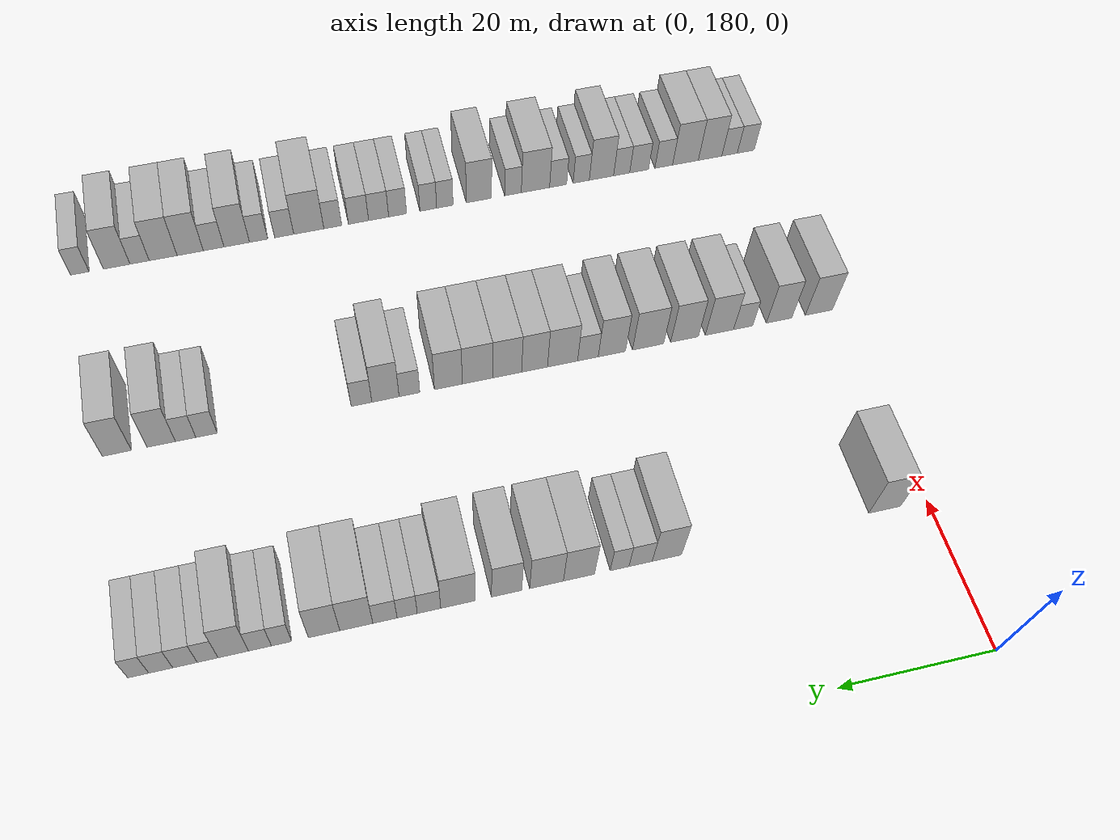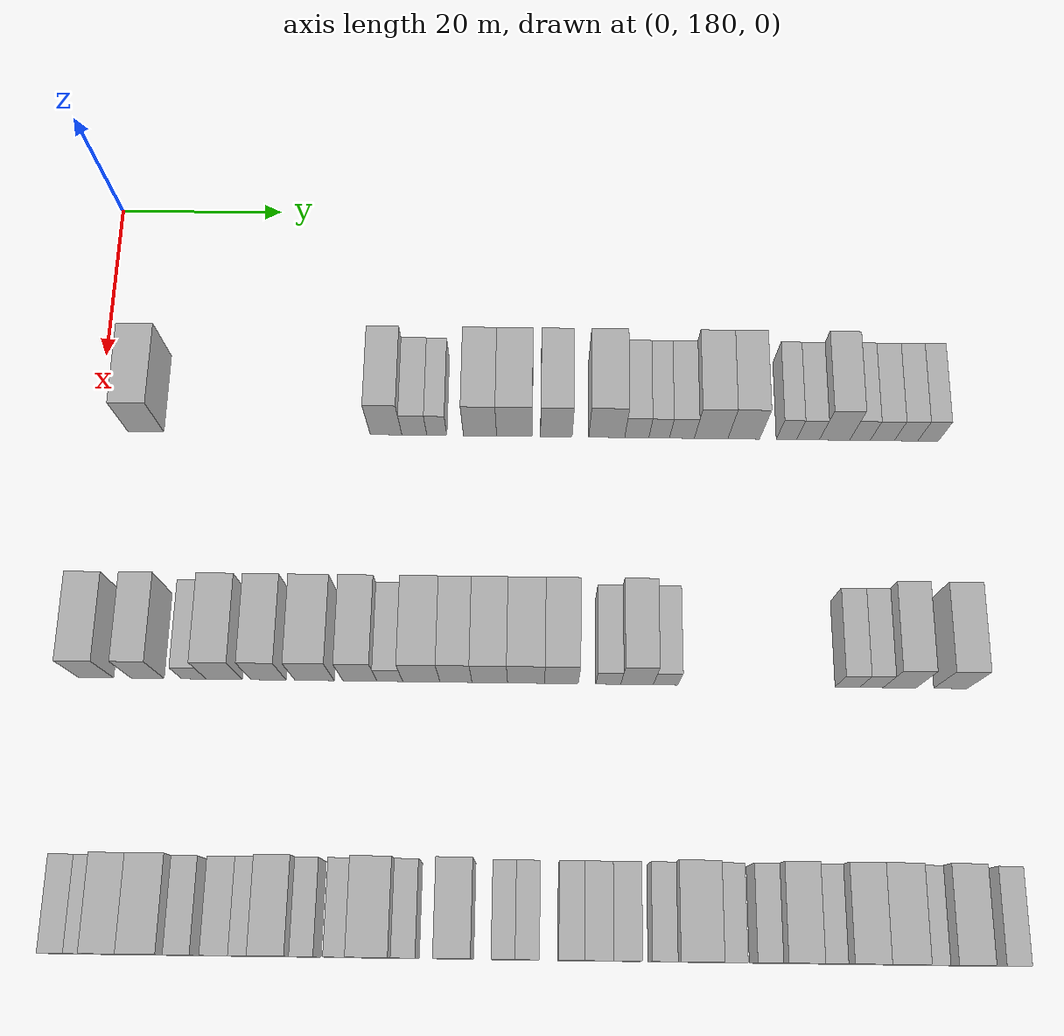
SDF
<sdf version="1.6">
 <world name="default">
  <model name="building_116">
   <static>1</static>
   <pose>25.0000 185.7543 0 0.000000 0.000000 0.000000</pose>
   <link name="link">
    <pose>0 0 4.50 0 0 0</pose>
    <collision name="collision"><geometry><box><size>10.0000 4.3108 9.0000</size></box></geometry></collision>
    <visual name="visual">
     <cast_shadows>0</cast_shadows>
     <geometry><box><size>10.0000 4.3108 9.0000</size></box></geometry>
     <material>
      <script>
       <uri>model://HANNAS_wall/materials/scripts</uri>
       <uri>model://HANNAS_wall/materials/textures</uri>
       <name>vrc/HANNAS_wall</name>
      </script>
     </material>
    </visual>
   </link>
  </model>
  <model name="building_117">
   <static>1</static>
   <pose>25.0000 214.6061 0 0.000000 0.000000 0.000000</pose>
   <link name="link">
    <pose>0 0 4.50 0 0 0</pose>
    <collision name="collision"><geometry><box><size>10.0000 3.7976 9.0000</size></box></geometry></collision>
    <visual name="visual">
     <cast_shadows>0</cast_shadows>
     <geometry><box><size>10.0000 3.7976 9.0000</size></box></geometry>
     <material>
      <script>
       <uri>model://HANNAS_wall/materials/scripts</uri>
       <uri>model://HANNAS_wall/materials/textures</uri>
       <name>vrc/HANNAS_wall</name>
      </script>
     </material>
    </visual>
   </link>
  </model>
  <model name="building_118">
   <static>1</static>
   <pose>25.0000 218.0024 0 0.000000 0.000000 0.000000</pose>
   <link name="link">
    <pose>0 0 3.00 0 0 0</pose>
    <collision name="collision"><geometry><box><size>10.0000 2.9949 6.0000</size></box></geometry></collision>
    <visual name="visual">
     <cast_shadows>0</cast_shadows>
     <geometry><box><size>10.0000 2.9949 6.0000</size></box></geometry>
     <material>
      <script>
       <uri>model://HANNAS_wall/materials/scripts</uri>
       <uri>model://HANNAS_wall/materials/textures</uri>
       <name>vrc/HANNAS_wall</name>
      </script>
     </material>
    </visual>
   </link>
  </model>
  <model name="building_119">
   <static>1</static>
   <pose>25.0000 220.7003 0 0.000000 0.000000 0.000000</pose>
   <link name="link">
    <pose>0 0 3.00 0 0 0</pose>
    <collision name="collision"><geometry><box><size>10.0000 2.4010 6.0000</size></box></geometry></collision>
    <visual name="visual">
     <cast_shadows>0</cast_shadows>
     <geometry><box><size>10.0000 2.4010 6.0000</size></box></geometry>
     <material>
      <script>
       <uri>model://HANNAS_wall/materials/scripts</uri>
       <uri>model://HANNAS_wall/materials/textures</uri>
       <name>vrc/HANNAS_wall</name>
      </script>
     </material>
    </visual>
   </link>
  </model>
  <model name="building_120">
   <static>1</static>
   <pose>25.0000 225.8853 0 0.000000 0.000000 0.000000</pose>
   <link name="link">
    <pose>0 0 4.50 0 0 0</pose>
    <collision name="collision"><geometry><box><size>10.0000 3.9689 9.0000</size></box></geometry></collision>
    <visual name="visual">
     <cast_shadows>0</cast_shadows>
     <geometry><box><size>10.0000 3.9689 9.0000</size></box></geometry>
     <material>
      <script>
       <uri>model://HANNAS_wall/materials/scripts</uri>
       <uri>model://HANNAS_wall/materials/textures</uri>
       <name>vrc/HANNAS_wall</name>
      </script>
     </material>
    </visual>
   </link>
  </model>
  <model name="building_121">
   <static>1</static>
   <pose>25.0000 230.0027 0 0.000000 0.000000 0.000000</pose>
   <link name="link">
    <pose>0 0 4.50 0 0 0</pose>
    <collision name="collision"><geometry><box><size>10.0000 4.2660 9.0000</size></box></geometry></collision>
    <visual name="visual">
     <cast_shadows>0</cast_shadows>
     <geometry><box><size>10.0000 4.2660 9.0000</size></box></geometry>
     <material>
      <script>
       <uri>model://HANNAS_wall/materials/scripts</uri>
       <uri>model://HANNAS_wall/materials/textures</uri>
       <name>vrc/HANNAS_wall</name>
      </script>
     </material>
    </visual>
   </link>
  </model>
  <model name="building_122">
   <static>1</static>
   <pose>25.0000 235.0305 0 0.000000 0.000000 0.000000</pose>
   <link name="link">
    <pose>0 0 4.50 0 0 0</pose>
    <collision name="collision"><geometry><box><size>10.0000 3.7897 9.0000</size></box></geometry></collision>
    <visual name="visual">
     <cast_shadows>0</cast_shadows>
     <geometry><box><size>10.0000 3.7897 9.0000</size></box></geometry>
     <material>
      <script>
       <uri>model://HANNAS_wall/materials/scripts</uri>
       <uri>model://HANNAS_wall/materials/textures</uri>
       <name>vrc/HANNAS_wall</name>
      </script>
     </material>
    </visual>
   </link>
  </model>
  <model name="building_123">
   <static>1</static>
   <pose>25.0000 241.0811 0 0.000000 0.000000 0.000000</pose>
   <link name="link">
    <pose>0 0 4.50 0 0 0</pose>
    <collision name="collision"><geometry><box><size>10.0000 4.3114 9.0000</size></box></geometry></collision>
    <visual name="visual">
     <cast_shadows>0</cast_shadows>
     <geometry><box><size>10.0000 4.3114 9.0000</size></box></geometry>
     <material>
      <script>
       <uri>model://HANNAS_wall/materials/scripts</uri>
       <uri>model://HANNAS_wall/materials/textures</uri>
       <name>vrc/HANNAS_wall</name>
      </script>
     </material>
    </visual>
   </link>
  </model>
  <model name="building_124">
   <static>1</static>
   <pose>25.0000 244.6826 0 0.000000 0.000000 0.000000</pose>
   <link name="link">
    <pose>0 0 3.00 0 0 0</pose>
    <collision name="collision"><geometry><box><size>10.0000 2.8916 6.0000</size></box></geometry></collision>
    <visual name="visual">
     <cast_shadows>0</cast_shadows>
     <geometry><box><size>10.0000 2.8916 6.0000</size></box></geometry>
     <material>
      <script>
       <uri>model://HANNAS_wall/materials/scripts</uri>
       <uri>model://HANNAS_wall/materials/textures</uri>
       <name>vrc/HANNAS_wall</name>
      </script>
     </material>
    </visual>
   </link>
  </model>
  <model name="building_125">
   <static>1</static>
   <pose>25.0000 247.3691 0 0.000000 0.000000 0.000000</pose>
   <link name="link">
    <pose>0 0 3.00 0 0 0</pose>
    <collision name="collision"><geometry><box><size>10.0000 2.4814 6.0000</size></box></geometry></collision>
    <visual name="visual">
     <cast_shadows>0</cast_shadows>
     <geometry><box><size>10.0000 2.4814 6.0000</size></box></geometry>
     <material>
      <script>
       <uri>model://HANNAS_wall/materials/scripts</uri>
       <uri>model://HANNAS_wall/materials/textures</uri>
       <name>vrc/HANNAS_wall</name>
      </script>
     </material>
    </visual>
   </link>
  </model>
  <model name="building_126">
   <static>1</static>
   <pose>25.0000 250.0940 0 0.000000 0.000000 0.000000</pose>
   <link name="link">
    <pose>0 0 3.00 0 0 0</pose>
    <collision name="collision"><geometry><box><size>10.0000 2.9683 6.0000</size></box></geometry></collision>
    <visual name="visual">
     <cast_shadows>0</cast_shadows>
     <geometry><box><size>10.0000 2.9683 6.0000</size></box></geometry>
     <material>
      <script>
       <uri>model://HANNAS_wall/materials/scripts</uri>
       <uri>model://HANNAS_wall/materials/textures</uri>
       <name>vrc/HANNAS_wall</name>
      </script>
     </material>
    </visual>
   </link>
  </model>
  <model name="building_127">
   <static>1</static>
   <pose>25.0000 253.5881 0 0.000000 0.000000 0.000000</pose>
   <link name="link">
    <pose>0 0 4.50 0 0 0</pose>
    <collision name="collision"><geometry><box><size>10.0000 4.0201 9.0000</size></box></geometry></collision>
    <visual name="visual">
     <cast_shadows>0</cast_shadows>
     <geometry><box><size>10.0000 4.0201 9.0000</size></box></geometry>
     <material>
      <script>
       <uri>model://HANNAS_wall/materials/scripts</uri>
       <uri>model://HANNAS_wall/materials/textures</uri>
       <name>vrc/HANNAS_wall</name>
      </script>
     </material>
    </visual>
   </link>
  </model>
  <model name="building_128">
   <static>1</static>
   <pose>25.0000 257.5012 0 0.000000 0.000000 0.000000</pose>
   <link name="link">
    <pose>0 0 4.50 0 0 0</pose>
    <collision name="collision"><geometry><box><size>10.0000 3.8061 9.0000</size></box></geometry></collision>
    <visual name="visual">
     <cast_shadows>0</cast_shadows>
     <geometry><box><size>10.0000 3.8061 9.0000</size></box></geometry>
     <material>
      <script>
       <uri>model://HANNAS_wall/materials/scripts</uri>
       <uri>model://HANNAS_wall/materials/textures</uri>
       <name>vrc/HANNAS_wall</name>
      </script>
     </material>
    </visual>
   </link>
  </model>
  <model name="building_129">
   <static>1</static>
   <pose>25.0000 262.6224 0 0.000000 0.000000 0.000000</pose>
   <link name="link">
    <pose>0 0 3.00 0 0 0</pose>
    <collision name="collision"><geometry><box><size>10.0000 2.4363 6.0000</size></box></geometry></collision>
    <visual name="visual">
     <cast_shadows>0</cast_shadows>
     <geometry><box><size>10.0000 2.4363 6.0000</size></box></geometry>
     <material>
      <script>
       <uri>model://HANNAS_wall/materials/scripts</uri>
       <uri>model://HANNAS_wall/materials/textures</uri>
       <name>vrc/HANNAS_wall</name>
      </script>
     </material>
    </visual>
   </link>
  </model>
  <model name="building_130">
   <static>1</static>
   <pose>25.0000 265.2076 0 0.000000 0.000000 0.000000</pose>
   <link name="link">
    <pose>0 0 3.00 0 0 0</pose>
    <collision name="collision"><geometry><box><size>10.0000 2.7340 6.0000</size></box></geometry></collision>
    <visual name="visual">
     <cast_shadows>0</cast_shadows>
     <geometry><box><size>10.0000 2.7340 6.0000</size></box></geometry>
     <material>
      <script>
       <uri>model://HANNAS_wall/materials/scripts</uri>
       <uri>model://HANNAS_wall/materials/textures</uri>
       <name>vrc/HANNAS_wall</name>
      </script>
     </material>
    </visual>
   </link>
  </model>
  <model name="building_131">
   <static>1</static>
   <pose>25.0000 268.3865 0 0.000000 0.000000 0.000000</pose>
   <link name="link">
    <pose>0 0 4.50 0 0 0</pose>
    <collision name="collision"><geometry><box><size>10.0000 3.6237 9.0000</size></box></geometry></collision>
    <visual name="visual">
     <cast_shadows>0</cast_shadows>
     <geometry><box><size>10.0000 3.6237 9.0000</size></box></geometry>
     <material>
      <script>
       <uri>model://HANNAS_wall/materials/scripts</uri>
       <uri>model://HANNAS_wall/materials/textures</uri>
       <name>vrc/HANNAS_wall</name>
      </script>
     </material>
    </visual>
   </link>
  </model>
  <model name="building_132">
   <static>1</static>
   <pose>25.0000 271.4313 0 0.000000 0.000000 0.000000</pose>
   <link name="link">
    <pose>0 0 3.00 0 0 0</pose>
    <collision name="collision"><geometry><box><size>10.0000 2.4657 6.0000</size></box></geometry></collision>
    <visual name="visual">
     <cast_shadows>0</cast_shadows>
     <geometry><box><size>10.0000 2.4657 6.0000</size></box></geometry>
     <material>
      <script>
       <uri>model://HANNAS_wall/materials/scripts</uri>
       <uri>model://HANNAS_wall/materials/textures</uri>
       <name>vrc/HANNAS_wall</name>
      </script>
     </material>
    </visual>
   </link>
  </model>
  <model name="building_133">
   <static>1</static>
   <pose>25.0000 274.1054 0 0.000000 0.000000 0.000000</pose>
   <link name="link">
    <pose>0 0 3.00 0 0 0</pose>
    <collision name="collision"><geometry><box><size>10.0000 2.8825 6.0000</size></box></geometry></collision>
    <visual name="visual">
     <cast_shadows>0</cast_shadows>
     <geometry><box><size>10.0000 2.8825 6.0000</size></box></geometry>
     <material>
      <script>
       <uri>model://HANNAS_wall/materials/scripts</uri>
       <uri>model://HANNAS_wall/materials/textures</uri>
       <name>vrc/HANNAS_wall</name>
      </script>
     </material>
    </visual>
   </link>
  </model>
  <model name="building_134">
   <static>1</static>
   <pose>25.0000 276.9560 0 0.000000 0.000000 0.000000</pose>
   <link name="link">
    <pose>0 0 3.00 0 0 0</pose>
    <collision name="collision"><geometry><box><size>10.0000 2.8188 6.0000</size></box></geometry></collision>
    <visual name="visual">
     <cast_shadows>0</cast_shadows>
     <geometry><box><size>10.0000 2.8188 6.0000</size></box></geometry>
     <material>
      <script>
       <uri>model://HANNAS_wall/materials/scripts</uri>
       <uri>model://HANNAS_wall/materials/textures</uri>
       <name>vrc/HANNAS_wall</name>
      </script>
     </material>
    </visual>
   </link>
  </model>
  <model name="building_135">
   <static>1</static>
   <pose>25.0000 279.5966 0 0.000000 0.000000 0.000000</pose>
   <link name="link">
    <pose>0 0 3.00 0 0 0</pose>
    <collision name="collision"><geometry><box><size>10.0000 2.4624 6.0000</size></box></geometry></collision>
    <visual name="visual">
     <cast_shadows>0</cast_shadows>
     <geometry><box><size>10.0000 2.4624 6.0000</size></box></geometry>
     <material>
      <script>
       <uri>model://HANNAS_wall/materials/scripts</uri>
       <uri>model://HANNAS_wall/materials/textures</uri>
       <name>vrc/HANNAS_wall</name>
      </script>
     </material>
    </visual>
   </link>
  </model>
  <model name="building_251">
   <static>1</static>
   <pose>55.0000 182.9969 0 0.000000 0.000000 0.000000</pose>
   <link name="link">
    <pose>0 0 4.50 0 0 0</pose>
    <collision name="collision"><geometry><box><size>10.0000 3.9967 9.0000</size></box></geometry></collision>
    <visual name="visual">
     <cast_shadows>0</cast_shadows>
     <geometry><box><size>10.0000 3.9967 9.0000</size></box></geometry>
     <material>
      <script>
       <uri>model://HANNAS_wall/materials/scripts</uri>
       <uri>model://HANNAS_wall/materials/textures</uri>
       <name>vrc/HANNAS_wall</name>
      </script>
     </material>
    </visual>
   </link>
  </model>
  <model name="building_252">
   <static>1</static>
   <pose>55.0000 188.8601 0 0.000000 0.000000 0.000000</pose>
   <link name="link">
    <pose>0 0 4.50 0 0 0</pose>
    <collision name="collision"><geometry><box><size>10.0000 3.7296 9.0000</size></box></geometry></collision>
    <visual name="visual">
     <cast_shadows>0</cast_shadows>
     <geometry><box><size>10.0000 3.7296 9.0000</size></box></geometry>
     <material>
      <script>
       <uri>model://HANNAS_wall/materials/scripts</uri>
       <uri>model://HANNAS_wall/materials/textures</uri>
       <name>vrc/HANNAS_wall</name>
      </script>
     </material>
    </visual>
   </link>
  </model>
  <model name="building_253">
   <static>1</static>
   <pose>55.0000 194.1191 0 0.000000 0.000000 0.000000</pose>
   <link name="link">
    <pose>0 0 3.00 0 0 0</pose>
    <collision name="collision"><geometry><box><size>10.0000 2.7883 6.0000</size></box></geometry></collision>
    <visual name="visual">
     <cast_shadows>0</cast_shadows>
     <geometry><box><size>10.0000 2.7883 6.0000</size></box></geometry>
     <material>
      <script>
       <uri>model://HANNAS_wall/materials/scripts</uri>
       <uri>model://HANNAS_wall/materials/textures</uri>
       <name>vrc/HANNAS_wall</name>
      </script>
     </material>
    </visual>
   </link>
  </model>
  <model name="building_254">
   <static>1</static>
   <pose>55.0000 197.5589 0 0.000000 0.000000 0.000000</pose>
   <link name="link">
    <pose>0 0 4.50 0 0 0</pose>
    <collision name="collision"><geometry><box><size>10.0000 4.0913 9.0000</size></box></geometry></collision>
    <visual name="visual">
     <cast_shadows>0</cast_shadows>
     <geometry><box><size>10.0000 4.0913 9.0000</size></box></geometry>
     <material>
      <script>
       <uri>model://HANNAS_wall/materials/scripts</uri>
       <uri>model://HANNAS_wall/materials/textures</uri>
       <name>vrc/HANNAS_wall</name>
      </script>
     </material>
    </visual>
   </link>
  </model>
  <model name="building_255">
   <static>1</static>
   <pose>55.0000 202.6012 0 0.000000 0.000000 0.000000</pose>
   <link name="link">
    <pose>0 0 4.50 0 0 0</pose>
    <collision name="collision"><geometry><box><size>10.0000 3.9933 9.0000</size></box></geometry></collision>
    <visual name="visual">
     <cast_shadows>0</cast_shadows>
     <geometry><box><size>10.0000 3.9933 9.0000</size></box></geometry>
     <material>
      <script>
       <uri>model://HANNAS_wall/materials/scripts</uri>
       <uri>model://HANNAS_wall/materials/textures</uri>
       <name>vrc/HANNAS_wall</name>
      </script>
     </material>
    </visual>
   </link>
  </model>
  <model name="building_256">
   <static>1</static>
   <pose>55.0000 207.8295 0 0.000000 0.000000 0.000000</pose>
   <link name="link">
    <pose>0 0 4.50 0 0 0</pose>
    <collision name="collision"><geometry><box><size>10.0000 4.4632 9.0000</size></box></geometry></collision>
    <visual name="visual">
     <cast_shadows>0</cast_shadows>
     <geometry><box><size>10.0000 4.4632 9.0000</size></box></geometry>
     <material>
      <script>
       <uri>model://HANNAS_wall/materials/scripts</uri>
       <uri>model://HANNAS_wall/materials/textures</uri>
       <name>vrc/HANNAS_wall</name>
      </script>
     </material>
    </visual>
   </link>
  </model>
  <model name="building_257">
   <static>1</static>
   <pose>55.0000 212.9936 0 0.000000 0.000000 0.000000</pose>
   <link name="link">
    <pose>0 0 4.50 0 0 0</pose>
    <collision name="collision"><geometry><box><size>10.0000 3.8649 9.0000</size></box></geometry></collision>
    <visual name="visual">
     <cast_shadows>0</cast_shadows>
     <geometry><box><size>10.0000 3.8649 9.0000</size></box></geometry>
     <material>
      <script>
       <uri>model://HANNAS_wall/materials/scripts</uri>
       <uri>model://HANNAS_wall/materials/textures</uri>
       <name>vrc/HANNAS_wall</name>
      </script>
     </material>
    </visual>
   </link>
  </model>
  <model name="building_258">
   <static>1</static>
   <pose>55.0000 216.3793 0 0.000000 0.000000 0.000000</pose>
   <link name="link">
    <pose>0 0 3.00 0 0 0</pose>
    <collision name="collision"><geometry><box><size>10.0000 2.9066 6.0000</size></box></geometry></collision>
    <visual name="visual">
     <cast_shadows>0</cast_shadows>
     <geometry><box><size>10.0000 2.9066 6.0000</size></box></geometry>
     <material>
      <script>
       <uri>model://HANNAS_wall/materials/scripts</uri>
       <uri>model://HANNAS_wall/materials/textures</uri>
       <name>vrc/HANNAS_wall</name>
      </script>
     </material>
    </visual>
   </link>
  </model>
  <model name="building_259">
   <static>1</static>
   <pose>55.0000 219.9493 0 0.000000 0.000000 0.000000</pose>
   <link name="link">
    <pose>0 0 4.50 0 0 0</pose>
    <collision name="collision"><geometry><box><size>10.0000 4.2335 9.0000</size></box></geometry></collision>
    <visual name="visual">
     <cast_shadows>0</cast_shadows>
     <geometry><box><size>10.0000 4.2335 9.0000</size></box></geometry>
     <material>
      <script>
       <uri>model://HANNAS_wall/materials/scripts</uri>
       <uri>model://HANNAS_wall/materials/textures</uri>
       <name>vrc/HANNAS_wall</name>
      </script>
     </material>
    </visual>
   </link>
  </model>
  <model name="building_260">
   <static>1</static>
   <pose>55.0000 223.8778 0 0.000000 0.000000 0.000000</pose>
   <link name="link">
    <pose>0 0 4.50 0 0 0</pose>
    <collision name="collision"><geometry><box><size>10.0000 3.6234 9.0000</size></box></geometry></collision>
    <visual name="visual">
     <cast_shadows>0</cast_shadows>
     <geometry><box><size>10.0000 3.6234 9.0000</size></box></geometry>
     <material>
      <script>
       <uri>model://HANNAS_wall/materials/scripts</uri>
       <uri>model://HANNAS_wall/materials/textures</uri>
       <name>vrc/HANNAS_wall</name>
      </script>
     </material>
    </visual>
   </link>
  </model>
  <model name="building_261">
   <static>1</static>
   <pose>55.0000 227.7032 0 0.000000 0.000000 0.000000</pose>
   <link name="link">
    <pose>0 0 4.50 0 0 0</pose>
    <collision name="collision"><geometry><box><size>10.0000 4.0274 9.0000</size></box></geometry></collision>
    <visual name="visual">
     <cast_shadows>0</cast_shadows>
     <geometry><box><size>10.0000 4.0274 9.0000</size></box></geometry>
     <material>
      <script>
       <uri>model://HANNAS_wall/materials/scripts</uri>
       <uri>model://HANNAS_wall/materials/textures</uri>
       <name>vrc/HANNAS_wall</name>
      </script>
     </material>
    </visual>
   </link>
  </model>
  <model name="building_262">
   <static>1</static>
   <pose>55.0000 231.8077 0 0.000000 0.000000 0.000000</pose>
   <link name="link">
    <pose>0 0 4.50 0 0 0</pose>
    <collision name="collision"><geometry><box><size>10.0000 4.1816 9.0000</size></box></geometry></collision>
    <visual name="visual">
     <cast_shadows>0</cast_shadows>
     <geometry><box><size>10.0000 4.1816 9.0000</size></box></geometry>
     <material>
      <script>
       <uri>model://HANNAS_wall/materials/scripts</uri>
       <uri>model://HANNAS_wall/materials/textures</uri>
       <name>vrc/HANNAS_wall</name>
      </script>
     </material>
    </visual>
   </link>
  </model>
  <model name="building_263">
   <static>1</static>
   <pose>55.0000 235.8079 0 0.000000 0.000000 0.000000</pose>
   <link name="link">
    <pose>0 0 4.50 0 0 0</pose>
    <collision name="collision"><geometry><box><size>10.0000 3.8188 9.0000</size></box></geometry></collision>
    <visual name="visual">
     <cast_shadows>0</cast_shadows>
     <geometry><box><size>10.0000 3.8188 9.0000</size></box></geometry>
     <material>
      <script>
       <uri>model://HANNAS_wall/materials/scripts</uri>
       <uri>model://HANNAS_wall/materials/textures</uri>
       <name>vrc/HANNAS_wall</name>
      </script>
     </material>
    </visual>
   </link>
  </model>
  <model name="building_264">
   <static>1</static>
   <pose>55.0000 241.1278 0 0.000000 0.000000 0.000000</pose>
   <link name="link">
    <pose>0 0 3.00 0 0 0</pose>
    <collision name="collision"><geometry><box><size>10.0000 2.8210 6.0000</size></box></geometry></collision>
    <visual name="visual">
     <cast_shadows>0</cast_shadows>
     <geometry><box><size>10.0000 2.8210 6.0000</size></box></geometry>
     <material>
      <script>
       <uri>model://HANNAS_wall/materials/scripts</uri>
       <uri>model://HANNAS_wall/materials/textures</uri>
       <name>vrc/HANNAS_wall</name>
      </script>
     </material>
    </visual>
   </link>
  </model>
  <model name="building_265">
   <static>1</static>
   <pose>55.0000 244.3844 0 0.000000 0.000000 0.000000</pose>
   <link name="link">
    <pose>0 0 4.50 0 0 0</pose>
    <collision name="collision"><geometry><box><size>10.0000 3.6921 9.0000</size></box></geometry></collision>
    <visual name="visual">
     <cast_shadows>0</cast_shadows>
     <geometry><box><size>10.0000 3.6921 9.0000</size></box></geometry>
     <material>
      <script>
       <uri>model://HANNAS_wall/materials/scripts</uri>
       <uri>model://HANNAS_wall/materials/textures</uri>
       <name>vrc/HANNAS_wall</name>
      </script>
     </material>
    </visual>
   </link>
  </model>
  <model name="building_266">
   <static>1</static>
   <pose>55.0000 247.6260 0 0.000000 0.000000 0.000000</pose>
   <link name="link">
    <pose>0 0 3.00 0 0 0</pose>
    <collision name="collision"><geometry><box><size>10.0000 2.7911 6.0000</size></box></geometry></collision>
    <visual name="visual">
     <cast_shadows>0</cast_shadows>
     <geometry><box><size>10.0000 2.7911 6.0000</size></box></geometry>
     <material>
      <script>
       <uri>model://HANNAS_wall/materials/scripts</uri>
       <uri>model://HANNAS_wall/materials/textures</uri>
       <name>vrc/HANNAS_wall</name>
      </script>
     </material>
    </visual>
   </link>
  </model>
  <model name="building_267">
   <static>1</static>
   <pose>55.0000 268.2398 0 0.000000 0.000000 0.000000</pose>
   <link name="link">
    <pose>0 0 3.00 0 0 0</pose>
    <collision name="collision"><geometry><box><size>10.0000 2.8121 6.0000</size></box></geometry></collision>
    <visual name="visual">
     <cast_shadows>0</cast_shadows>
     <geometry><box><size>10.0000 2.8121 6.0000</size></box></geometry>
     <material>
      <script>
       <uri>model://HANNAS_wall/materials/scripts</uri>
       <uri>model://HANNAS_wall/materials/textures</uri>
       <name>vrc/HANNAS_wall</name>
      </script>
     </material>
    </visual>
   </link>
  </model>
  <model name="building_268">
   <static>1</static>
   <pose>55.0000 270.9795 0 0.000000 0.000000 0.000000</pose>
   <link name="link">
    <pose>0 0 3.00 0 0 0</pose>
    <collision name="collision"><geometry><box><size>10.0000 2.6672 6.0000</size></box></geometry></collision>
    <visual name="visual">
     <cast_shadows>0</cast_shadows>
     <geometry><box><size>10.0000 2.6672 6.0000</size></box></geometry>
     <material>
      <script>
       <uri>model://HANNAS_wall/materials/scripts</uri>
       <uri>model://HANNAS_wall/materials/textures</uri>
       <name>vrc/HANNAS_wall</name>
      </script>
     </material>
    </visual>
   </link>
  </model>
  <model name="building_269">
   <static>1</static>
   <pose>55.0000 274.1606 0 0.000000 0.000000 0.000000</pose>
   <link name="link">
    <pose>0 0 4.50 0 0 0</pose>
    <collision name="collision"><geometry><box><size>10.0000 3.6950 9.0000</size></box></geometry></collision>
    <visual name="visual">
     <cast_shadows>0</cast_shadows>
     <geometry><box><size>10.0000 3.6950 9.0000</size></box></geometry>
     <material>
      <script>
       <uri>model://HANNAS_wall/materials/scripts</uri>
       <uri>model://HANNAS_wall/materials/textures</uri>
       <name>vrc/HANNAS_wall</name>
      </script>
     </material>
    </visual>
   </link>
  </model>
  <model name="building_270">
   <static>1</static>
   <pose>55.0000 279.8959 0 0.000000 0.000000 0.000000</pose>
   <link name="link">
    <pose>0 0 4.50 0 0 0</pose>
    <collision name="collision"><geometry><box><size>10.0000 3.7755 9.0000</size></box></geometry></collision>
    <visual name="visual">
     <cast_shadows>0</cast_shadows>
     <geometry><box><size>10.0000 3.7755 9.0000</size></box></geometry>
     <material>
      <script>
       <uri>model://HANNAS_wall/materials/scripts</uri>
       <uri>model://HANNAS_wall/materials/textures</uri>
       <name>vrc/HANNAS_wall</name>
      </script>
     </material>
    </visual>
   </link>
  </model>
  <model name="building_389">
   <static>1</static>
   <pose>85.0000 183.1660 0 0.000000 0.000000 0.000000</pose>
   <link name="link">
    <pose>0 0 3.00 0 0 0</pose>
    <collision name="collision"><geometry><box><size>10.0000 2.6943 6.0000</size></box></geometry></collision>
    <visual name="visual">
     <cast_shadows>0</cast_shadows>
     <geometry><box><size>10.0000 2.6943 6.0000</size></box></geometry>
     <material>
      <script>
       <uri>model://HANNAS_wall/materials/scripts</uri>
       <uri>model://HANNAS_wall/materials/textures</uri>
       <name>vrc/HANNAS_wall</name>
      </script>
     </material>
    </visual>
   </link>
  </model>
  <model name="building_390">
   <static>1</static>
   <pose>85.0000 185.7430 0 0.000000 0.000000 0.000000</pose>
   <link name="link">
    <pose>0 0 3.00 0 0 0</pose>
    <collision name="collision"><geometry><box><size>10.0000 2.4596 6.0000</size></box></geometry></collision>
    <visual name="visual">
     <cast_shadows>0</cast_shadows>
     <geometry><box><size>10.0000 2.4596 6.0000</size></box></geometry>
     <material>
      <script>
       <uri>model://HANNAS_wall/materials/scripts</uri>
       <uri>model://HANNAS_wall/materials/textures</uri>
       <name>vrc/HANNAS_wall</name>
      </script>
     </material>
    </visual>
   </link>
  </model>
  <model name="building_391">
   <static>1</static>
   <pose>85.0000 188.8410 0 0.000000 0.000000 0.000000</pose>
   <link name="link">
    <pose>0 0 4.50 0 0 0</pose>
    <collision name="collision"><geometry><box><size>10.0000 3.7365 9.0000</size></box></geometry></collision>
    <visual name="visual">
     <cast_shadows>0</cast_shadows>
     <geometry><box><size>10.0000 3.7365 9.0000</size></box></geometry>
     <material>
      <script>
       <uri>model://HANNAS_wall/materials/scripts</uri>
       <uri>model://HANNAS_wall/materials/textures</uri>
       <name>vrc/HANNAS_wall</name>
      </script>
     </material>
    </visual>
   </link>
  </model>
  <model name="building_392">
   <static>1</static>
   <pose>85.0000 192.7495 0 0.000000 0.000000 0.000000</pose>
   <link name="link">
    <pose>0 0 4.50 0 0 0</pose>
    <collision name="collision"><geometry><box><size>10.0000 4.0806 9.0000</size></box></geometry></collision>
    <visual name="visual">
     <cast_shadows>0</cast_shadows>
     <geometry><box><size>10.0000 4.0806 9.0000</size></box></geometry>
     <material>
      <script>
       <uri>model://HANNAS_wall/materials/scripts</uri>
       <uri>model://HANNAS_wall/materials/textures</uri>
       <name>vrc/HANNAS_wall</name>
      </script>
     </material>
    </visual>
   </link>
  </model>
  <model name="building_393">
   <static>1</static>
   <pose>85.0000 196.1779 0 0.000000 0.000000 0.000000</pose>
   <link name="link">
    <pose>0 0 3.00 0 0 0</pose>
    <collision name="collision"><geometry><box><size>10.0000 2.7762 6.0000</size></box></geometry></collision>
    <visual name="visual">
     <cast_shadows>0</cast_shadows>
     <geometry><box><size>10.0000 2.7762 6.0000</size></box></geometry>
     <material>
      <script>
       <uri>model://HANNAS_wall/materials/scripts</uri>
       <uri>model://HANNAS_wall/materials/textures</uri>
       <name>vrc/HANNAS_wall</name>
      </script>
     </material>
    </visual>
   </link>
  </model>
  <model name="building_394">
   <static>1</static>
   <pose>85.0000 200.0394 0 0.000000 0.000000 0.000000</pose>
   <link name="link">
    <pose>0 0 3.00 0 0 0</pose>
    <collision name="collision"><geometry><box><size>10.0000 2.9467 6.0000</size></box></geometry></collision>
    <visual name="visual">
     <cast_shadows>0</cast_shadows>
     <geometry><box><size>10.0000 2.9467 6.0000</size></box></geometry>
     <material>
      <script>
       <uri>model://HANNAS_wall/materials/scripts</uri>
       <uri>model://HANNAS_wall/materials/textures</uri>
       <name>vrc/HANNAS_wall</name>
      </script>
     </material>
    </visual>
   </link>
  </model>
  <model name="building_395">
   <static>1</static>
   <pose>85.0000 202.7667 0 0.000000 0.000000 0.000000</pose>
   <link name="link">
    <pose>0 0 3.00 0 0 0</pose>
    <collision name="collision"><geometry><box><size>10.0000 2.5081 6.0000</size></box></geometry></collision>
    <visual name="visual">
     <cast_shadows>0</cast_shadows>
     <geometry><box><size>10.0000 2.5081 6.0000</size></box></geometry>
     <material>
      <script>
       <uri>model://HANNAS_wall/materials/scripts</uri>
       <uri>model://HANNAS_wall/materials/textures</uri>
       <name>vrc/HANNAS_wall</name>
      </script>
     </material>
    </visual>
   </link>
  </model>
  <model name="building_396">
   <static>1</static>
   <pose>85.0000 205.9100 0 0.000000 0.000000 0.000000</pose>
   <link name="link">
    <pose>0 0 4.50 0 0 0</pose>
    <collision name="collision"><geometry><box><size>10.0000 3.7785 9.0000</size></box></geometry></collision>
    <visual name="visual">
     <cast_shadows>0</cast_shadows>
     <geometry><box><size>10.0000 3.7785 9.0000</size></box></geometry>
     <material>
      <script>
       <uri>model://HANNAS_wall/materials/scripts</uri>
       <uri>model://HANNAS_wall/materials/textures</uri>
       <name>vrc/HANNAS_wall</name>
      </script>
     </material>
    </visual>
   </link>
  </model>
  <model name="building_397">
   <static>1</static>
   <pose>85.0000 209.0492 0 0.000000 0.000000 0.000000</pose>
   <link name="link">
    <pose>0 0 3.00 0 0 0</pose>
    <collision name="collision"><geometry><box><size>10.0000 2.4999 6.0000</size></box></geometry></collision>
    <visual name="visual">
     <cast_shadows>0</cast_shadows>
     <geometry><box><size>10.0000 2.4999 6.0000</size></box></geometry>
     <material>
      <script>
       <uri>model://HANNAS_wall/materials/scripts</uri>
       <uri>model://HANNAS_wall/materials/textures</uri>
       <name>vrc/HANNAS_wall</name>
      </script>
     </material>
    </visual>
   </link>
  </model>
  <model name="building_398">
   <static>1</static>
   <pose>85.0000 212.6147 0 0.000000 0.000000 0.000000</pose>
   <link name="link">
    <pose>0 0 3.00 0 0 0</pose>
    <collision name="collision"><geometry><box><size>10.0000 2.6310 6.0000</size></box></geometry></collision>
    <visual name="visual">
     <cast_shadows>0</cast_shadows>
     <geometry><box><size>10.0000 2.6310 6.0000</size></box></geometry>
     <material>
      <script>
       <uri>model://HANNAS_wall/materials/scripts</uri>
       <uri>model://HANNAS_wall/materials/textures</uri>
       <name>vrc/HANNAS_wall</name>
      </script>
     </material>
    </visual>
   </link>
  </model>
  <model name="building_399">
   <static>1</static>
   <pose>85.0000 216.0961 0 0.000000 0.000000 0.000000</pose>
   <link name="link">
    <pose>0 0 4.50 0 0 0</pose>
    <collision name="collision"><geometry><box><size>10.0000 4.3318 9.0000</size></box></geometry></collision>
    <visual name="visual">
     <cast_shadows>0</cast_shadows>
     <geometry><box><size>10.0000 4.3318 9.0000</size></box></geometry>
     <material>
      <script>
       <uri>model://HANNAS_wall/materials/scripts</uri>
       <uri>model://HANNAS_wall/materials/textures</uri>
       <name>vrc/HANNAS_wall</name>
      </script>
     </material>
    </visual>
   </link>
  </model>
  <model name="building_400">
   <static>1</static>
   <pose>85.0000 219.5346 0 0.000000 0.000000 0.000000</pose>
   <link name="link">
    <pose>0 0 3.00 0 0 0</pose>
    <collision name="collision"><geometry><box><size>10.0000 2.5452 6.0000</size></box></geometry></collision>
    <visual name="visual">
     <cast_shadows>0</cast_shadows>
     <geometry><box><size>10.0000 2.5452 6.0000</size></box></geometry>
     <material>
      <script>
       <uri>model://HANNAS_wall/materials/scripts</uri>
       <uri>model://HANNAS_wall/materials/textures</uri>
       <name>vrc/HANNAS_wall</name>
      </script>
     </material>
    </visual>
   </link>
  </model>
  <model name="building_401">
   <static>1</static>
   <pose>85.0000 224.7142 0 0.000000 0.000000 0.000000</pose>
   <link name="link">
    <pose>0 0 4.50 0 0 0</pose>
    <collision name="collision"><geometry><box><size>10.0000 3.8140 9.0000</size></box></geometry></collision>
    <visual name="visual">
     <cast_shadows>0</cast_shadows>
     <geometry><box><size>10.0000 3.8140 9.0000</size></box></geometry>
     <material>
      <script>
       <uri>model://HANNAS_wall/materials/scripts</uri>
       <uri>model://HANNAS_wall/materials/textures</uri>
       <name>vrc/HANNAS_wall</name>
      </script>
     </material>
    </visual>
   </link>
  </model>
  <model name="building_402">
   <static>1</static>
   <pose>85.0000 229.8576 0 0.000000 0.000000 0.000000</pose>
   <link name="link">
    <pose>0 0 3.00 0 0 0</pose>
    <collision name="collision"><geometry><box><size>10.0000 2.4727 6.0000</size></box></geometry></collision>
    <visual name="visual">
     <cast_shadows>0</cast_shadows>
     <geometry><box><size>10.0000 2.4727 6.0000</size></box></geometry>
     <material>
      <script>
       <uri>model://HANNAS_wall/materials/scripts</uri>
       <uri>model://HANNAS_wall/materials/textures</uri>
       <name>vrc/HANNAS_wall</name>
      </script>
     </material>
    </visual>
   </link>
  </model>
  <model name="building_403">
   <static>1</static>
   <pose>85.0000 232.3490 0 0.000000 0.000000 0.000000</pose>
   <link name="link">
    <pose>0 0 3.00 0 0 0</pose>
    <collision name="collision"><geometry><box><size>10.0000 2.5102 6.0000</size></box></geometry></collision>
    <visual name="visual">
     <cast_shadows>0</cast_shadows>
     <geometry><box><size>10.0000 2.5102 6.0000</size></box></geometry>
     <material>
      <script>
       <uri>model://HANNAS_wall/materials/scripts</uri>
       <uri>model://HANNAS_wall/materials/textures</uri>
       <name>vrc/HANNAS_wall</name>
      </script>
     </material>
    </visual>
   </link>
  </model>
  <model name="building_404">
   <static>1</static>
   <pose>85.0000 236.9378 0 0.000000 0.000000 0.000000</pose>
   <link name="link">
    <pose>0 0 3.00 0 0 0</pose>
    <collision name="collision"><geometry><box><size>10.0000 2.6673 6.0000</size></box></geometry></collision>
    <visual name="visual">
     <cast_shadows>0</cast_shadows>
     <geometry><box><size>10.0000 2.6673 6.0000</size></box></geometry>
     <material>
      <script>
       <uri>model://HANNAS_wall/materials/scripts</uri>
       <uri>model://HANNAS_wall/materials/textures</uri>
       <name>vrc/HANNAS_wall</name>
      </script>
     </material>
    </visual>
   </link>
  </model>
  <model name="building_405">
   <static>1</static>
   <pose>85.0000 239.7623 0 0.000000 0.000000 0.000000</pose>
   <link name="link">
    <pose>0 0 3.00 0 0 0</pose>
    <collision name="collision"><geometry><box><size>10.0000 2.9818 6.0000</size></box></geometry></collision>
    <visual name="visual">
     <cast_shadows>0</cast_shadows>
     <geometry><box><size>10.0000 2.9818 6.0000</size></box></geometry>
     <material>
      <script>
       <uri>model://HANNAS_wall/materials/scripts</uri>
       <uri>model://HANNAS_wall/materials/textures</uri>
       <name>vrc/HANNAS_wall</name>
      </script>
     </material>
    </visual>
   </link>
  </model>
  <model name="building_406">
   <static>1</static>
   <pose>85.0000 242.7423 0 0.000000 0.000000 0.000000</pose>
   <link name="link">
    <pose>0 0 3.00 0 0 0</pose>
    <collision name="collision"><geometry><box><size>10.0000 2.9782 6.0000</size></box></geometry></collision>
    <visual name="visual">
     <cast_shadows>0</cast_shadows>
     <geometry><box><size>10.0000 2.9782 6.0000</size></box></geometry>
     <material>
      <script>
       <uri>model://HANNAS_wall/materials/scripts</uri>
       <uri>model://HANNAS_wall/materials/textures</uri>
       <name>vrc/HANNAS_wall</name>
      </script>
     </material>
    </visual>
   </link>
  </model>
  <model name="building_407">
   <static>1</static>
   <pose>85.0000 246.5492 0 0.000000 0.000000 0.000000</pose>
   <link name="link">
    <pose>0 0 3.00 0 0 0</pose>
    <collision name="collision"><geometry><box><size>10.0000 2.6355 6.0000</size></box></geometry></collision>
    <visual name="visual">
     <cast_shadows>0</cast_shadows>
     <geometry><box><size>10.0000 2.6355 6.0000</size></box></geometry>
     <material>
      <script>
       <uri>model://HANNAS_wall/materials/scripts</uri>
       <uri>model://HANNAS_wall/materials/textures</uri>
       <name>vrc/HANNAS_wall</name>
      </script>
     </material>
    </visual>
   </link>
  </model>
  <model name="building_408">
   <static>1</static>
   <pose>85.0000 250.0703 0 0.000000 0.000000 0.000000</pose>
   <link name="link">
    <pose>0 0 4.50 0 0 0</pose>
    <collision name="collision"><geometry><box><size>10.0000 4.4068 9.0000</size></box></geometry></collision>
    <visual name="visual">
     <cast_shadows>0</cast_shadows>
     <geometry><box><size>10.0000 4.4068 9.0000</size></box></geometry>
     <material>
      <script>
       <uri>model://HANNAS_wall/materials/scripts</uri>
       <uri>model://HANNAS_wall/materials/textures</uri>
       <name>vrc/HANNAS_wall</name>
      </script>
     </material>
    </visual>
   </link>
  </model>
  <model name="building_409">
   <static>1</static>
   <pose>85.0000 253.6671 0 0.000000 0.000000 0.000000</pose>
   <link name="link">
    <pose>0 0 3.00 0 0 0</pose>
    <collision name="collision"><geometry><box><size>10.0000 2.7868 6.0000</size></box></geometry></collision>
    <visual name="visual">
     <cast_shadows>0</cast_shadows>
     <geometry><box><size>10.0000 2.7868 6.0000</size></box></geometry>
     <material>
      <script>
       <uri>model://HANNAS_wall/materials/scripts</uri>
       <uri>model://HANNAS_wall/materials/textures</uri>
       <name>vrc/HANNAS_wall</name>
      </script>
     </material>
    </visual>
   </link>
  </model>
  <model name="building_410">
   <static>1</static>
   <pose>85.0000 257.3866 0 0.000000 0.000000 0.000000</pose>
   <link name="link">
    <pose>0 0 3.00 0 0 0</pose>
    <collision name="collision"><geometry><box><size>10.0000 2.6522 6.0000</size></box></geometry></collision>
    <visual name="visual">
     <cast_shadows>0</cast_shadows>
     <geometry><box><size>10.0000 2.6522 6.0000</size></box></geometry>
     <material>
      <script>
       <uri>model://HANNAS_wall/materials/scripts</uri>
       <uri>model://HANNAS_wall/materials/textures</uri>
       <name>vrc/HANNAS_wall</name>
      </script>
     </material>
    </visual>
   </link>
  </model>
  <model name="building_411">
   <static>1</static>
   <pose>85.0000 260.5634 0 0.000000 0.000000 0.000000</pose>
   <link name="link">
    <pose>0 0 4.50 0 0 0</pose>
    <collision name="collision"><geometry><box><size>10.0000 3.7014 9.0000</size></box></geometry></collision>
    <visual name="visual">
     <cast_shadows>0</cast_shadows>
     <geometry><box><size>10.0000 3.7014 9.0000</size></box></geometry>
     <material>
      <script>
       <uri>model://HANNAS_wall/materials/scripts</uri>
       <uri>model://HANNAS_wall/materials/textures</uri>
       <name>vrc/HANNAS_wall</name>
      </script>
     </material>
    </visual>
   </link>
  </model>
  <model name="building_412">
   <static>1</static>
   <pose>85.0000 263.8974 0 0.000000 0.000000 0.000000</pose>
   <link name="link">
    <pose>0 0 3.00 0 0 0</pose>
    <collision name="collision"><geometry><box><size>10.0000 2.9665 6.0000</size></box></geometry></collision>
    <visual name="visual">
     <cast_shadows>0</cast_shadows>
     <geometry><box><size>10.0000 2.9665 6.0000</size></box></geometry>
     <material>
      <script>
       <uri>model://HANNAS_wall/materials/scripts</uri>
       <uri>model://HANNAS_wall/materials/textures</uri>
       <name>vrc/HANNAS_wall</name>
      </script>
     </material>
    </visual>
   </link>
  </model>
  <model name="building_413">
   <static>1</static>
   <pose>85.0000 267.2605 0 0.000000 0.000000 0.000000</pose>
   <link name="link">
    <pose>0 0 4.50 0 0 0</pose>
    <collision name="collision"><geometry><box><size>10.0000 3.7598 9.0000</size></box></geometry></collision>
    <visual name="visual">
     <cast_shadows>0</cast_shadows>
     <geometry><box><size>10.0000 3.7598 9.0000</size></box></geometry>
     <material>
      <script>
       <uri>model://HANNAS_wall/materials/scripts</uri>
       <uri>model://HANNAS_wall/materials/textures</uri>
       <name>vrc/HANNAS_wall</name>
      </script>
     </material>
    </visual>
   </link>
  </model>
  <model name="building_414">
   <static>1</static>
   <pose>85.0000 271.1301 0 0.000000 0.000000 0.000000</pose>
   <link name="link">
    <pose>0 0 4.50 0 0 0</pose>
    <collision name="collision"><geometry><box><size>10.0000 3.9793 9.0000</size></box></geometry></collision>
    <visual name="visual">
     <cast_shadows>0</cast_shadows>
     <geometry><box><size>10.0000 3.9793 9.0000</size></box></geometry>
     <material>
      <script>
       <uri>model://HANNAS_wall/materials/scripts</uri>
       <uri>model://HANNAS_wall/materials/textures</uri>
       <name>vrc/HANNAS_wall</name>
      </script>
     </material>
    </visual>
   </link>
  </model>
  <model name="building_415">
   <static>1</static>
   <pose>85.0000 274.4870 0 0.000000 0.000000 0.000000</pose>
   <link name="link">
    <pose>0 0 3.00 0 0 0</pose>
    <collision name="collision"><geometry><box><size>10.0000 2.7346 6.0000</size></box></geometry></collision>
    <visual name="visual">
     <cast_shadows>0</cast_shadows>
     <geometry><box><size>10.0000 2.7346 6.0000</size></box></geometry>
     <material>
      <script>
       <uri>model://HANNAS_wall/materials/scripts</uri>
       <uri>model://HANNAS_wall/materials/textures</uri>
       <name>vrc/HANNAS_wall</name>
      </script>
     </material>
    </visual>
   </link>
  </model>
  <model name="building_416">
   <static>1</static>
   <pose>85.0000 277.7375 0 0.000000 0.000000 0.000000</pose>
   <link name="link">
    <pose>0 0 4.50 0 0 0</pose>
    <collision name="collision"><geometry><box><size>10.0000 3.7665 9.0000</size></box></geometry></collision>
    <visual name="visual">
     <cast_shadows>0</cast_shadows>
     <geometry><box><size>10.0000 3.7665 9.0000</size></box></geometry>
     <material>
      <script>
       <uri>model://HANNAS_wall/materials/scripts</uri>
       <uri>model://HANNAS_wall/materials/textures</uri>
       <name>vrc/HANNAS_wall</name>
      </script>
     </material>
    </visual>
   </link>
  </model>
  <model name="building_417">
   <static>1</static>
   <pose>85.0000 282.9293 0 0.000000 0.000000 0.000000</pose>
   <link name="link">
    <pose>0 0 3.00 0 0 0</pose>
    <collision name="collision"><geometry><box><size>10.0000 2.6170 6.0000</size></box></geometry></collision>
    <visual name="visual">
     <cast_shadows>0</cast_shadows>
     <geometry><box><size>10.0000 2.6170 6.0000</size></box></geometry>
     <material>
      <script>
       <uri>model://HANNAS_wall/materials/scripts</uri>
       <uri>model://HANNAS_wall/materials/textures</uri>
       <name>vrc/HANNAS_wall</name>
      </script>
     </material>
    </visual>
   </link>
  </model>
 </world>
</sdf>
